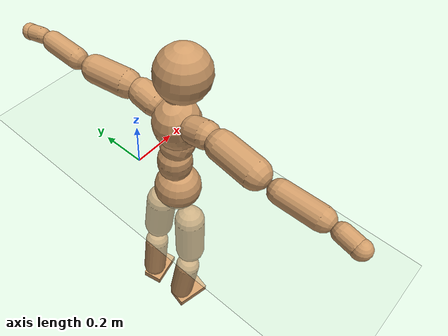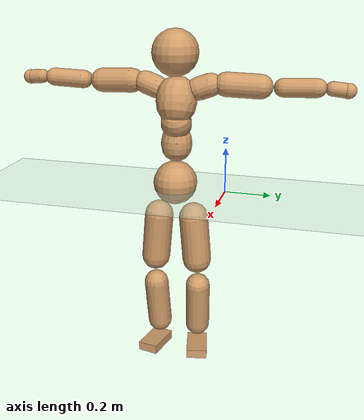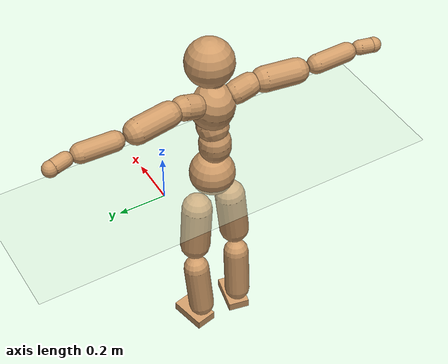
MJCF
<mujoco model="humanoid">
  <compiler coordinate="local"/>
  <default>
    <joint damping="0.0" armature="0.01" stiffness="0.0" limited="true"/>
    <geom conaffinity="1" condim="3" contype="7" margin="0.001" rgba="0.8 0.6 .4 1"/>
  </default>
  <asset>
    <texture type="skybox" builtin="gradient" rgb1=".4 .5 .6" rgb2="0 0 0" width="100" height="100"/>
    <texture builtin="flat" height="1278" mark="cross" markrgb="1 1 1" name="texgeom" random="0.01" rgb1="0.8 0.6 0.4" rgb2="0.8 0.6 0.4" type="cube" width="127"/>
    <texture builtin="checker" height="100" name="texplane" rgb1="0 0 0" rgb2="0.8 0.8 0.8" type="2d" width="100"/>
    <material name="MatPlane" reflectance="0.5" shininess="1" specular="1" texrepeat="60 60" texture="texplane"/>
    <material name="geom" texture="texgeom" texuniform="true"/>
  </asset>
  <worldbody>
    <light cutoff="100" diffuse="1 1 1" dir="-0 0 -1.3" directional="true" exponent="1" pos="0 0 1.3" specular=".1 .1 .1"/>
    <geom conaffinity="1" condim="3" name="floor" pos="0 0 0" rgba="0.8 0.9 0.8 1" size="100 100 .2" type="plane" material="MatPlane"/>
    <body name="Pelvis" pos="-0.0016 -0.2277 0.0263">
      <freejoint name="Pelvis"/>
      <geom type="sphere" contype="1" conaffinity="1" density="500" size="0.0982" pos="0.0000 0.0000 0.0000" name="Pelvis"/>
      <body name="L_Hip" pos="-0.0099 0.0768 -0.0929">
        <joint name="L_Hip_x" type="hinge" pos="0 0 0" axis="1 0 0" stiffness="800" damping="80" armature="0.02" range="-180.0000 180.0000"/>
        <joint name="L_Hip_y" type="hinge" pos="0 0 0" axis="0 1 0" stiffness="800" damping="80" armature="0.02" range="-180.0000 180.0000"/>
        <joint name="L_Hip_z" type="hinge" pos="0 0 0" axis="0 0 1" stiffness="800" damping="80" armature="0.02" range="-180.0000 180.0000"/>
        <geom type="capsule" contype="1" conaffinity="1" density="500" fromto="-0.0017 0.0053 -0.0700 -0.0069 0.0213 -0.2799" size="0.066" name="L_Hip"/>
        <body name="L_Knee" pos="-0.0086 0.0266 -0.3499">
          <joint name="L_Knee_x" type="hinge" pos="0 0 0" axis="1 0 0" stiffness="800" damping="80" armature="0.02" range="-180.0000 180.0000"/>
          <joint name="L_Knee_y" type="hinge" pos="0 0 0" axis="0 1 0" stiffness="800" damping="80" armature="0.02" range="-180.0000 180.0000"/>
          <joint name="L_Knee_z" type="hinge" pos="0 0 0" axis="0 0 1" stiffness="800" damping="80" armature="0.02" range="-180.0000 180.0000"/>
          <geom type="capsule" contype="1" conaffinity="1" density="500" fromto="-0.0094 -0.0023 -0.0731 -0.0377 -0.0092 -0.2924" size="0.0566" name="L_Knee"/>
          <body name="L_Ankle" pos="-0.0471 -0.0115 -0.3655">
            <joint name="L_Ankle_x" type="hinge" pos="0 0 0" axis="1 0 0" stiffness="800" damping="80" armature="0.02" range="-180.0000 180.0000"/>
            <joint name="L_Ankle_y" type="hinge" pos="0 0 0" axis="0 1 0" stiffness="800" damping="80" armature="0.02" range="-180.0000 180.0000"/>
            <joint name="L_Ankle_z" type="hinge" pos="0 0 0" axis="0 0 1" stiffness="800" damping="80" armature="0.02" range="-180.0000 180.0000"/>
            <geom type="box" contype="1" conaffinity="1" density="500" pos="0.0565 0.0122 -0.0263" size="0.0814 0.0477 0.0204" quat="0.9943 0.0000 0.0000 0.1064" name="L_Ankle"/>
            <body name="L_Toe" pos="0.113 0.0245 -0.0526">
              <joint name="L_Toe_x" type="hinge" pos="0 0 0" axis="1 0 0" stiffness="500" damping="50" armature="0.02" range="-180.0000 180.0000"/>
              <joint name="L_Toe_y" type="hinge" pos="0 0 0" axis="0 1 0" stiffness="500" damping="50" armature="0.02" range="-180.0000 180.0000"/>
              <joint name="L_Toe_z" type="hinge" pos="0 0 0" axis="0 0 1" stiffness="500" damping="50" armature="0.02" range="-180.0000 180.0000"/>
              <geom type="box" contype="1" conaffinity="1" density="500" pos="0.0000 0.0000 0.0264" size="0.001 0.0024 0.001" quat="0.9936 0.0000 0.0000 0.1128" name="L_Toe"/>
            </body>
          </body>
        </body>
      </body>
      <body name="R_Hip" pos="-0.0068 -0.074 -0.0924">
        <joint name="R_Hip_x" type="hinge" pos="0 0 0" axis="1 0 0" stiffness="800" damping="80" armature="0.02" range="-180.0000 180.0000"/>
        <joint name="R_Hip_y" type="hinge" pos="0 0 0" axis="0 1 0" stiffness="800" damping="80" armature="0.02" range="-180.0000 180.0000"/>
        <joint name="R_Hip_z" type="hinge" pos="0 0 0" axis="0 0 1" stiffness="800" damping="80" armature="0.02" range="-180.0000 180.0000"/>
        <geom type="capsule" contype="1" conaffinity="1" density="500" fromto="-0.0023 -0.0065 -0.0712 -0.0094 -0.0260 -0.2847" size="0.0654" name="R_Hip"/>
        <body name="R_Knee" pos="-0.0117 -0.0325 -0.3558">
          <joint name="R_Knee_x" type="hinge" pos="0 0 0" axis="1 0 0" stiffness="800" damping="80" armature="0.02" range="-180.0000 180.0000"/>
          <joint name="R_Knee_y" type="hinge" pos="0 0 0" axis="0 1 0" stiffness="800" damping="80" armature="0.02" range="-180.0000 180.0000"/>
          <joint name="R_Knee_z" type="hinge" pos="0 0 0" axis="0 0 1" stiffness="800" damping="80" armature="0.02" range="-180.0000 180.0000"/>
          <geom type="capsule" contype="1" conaffinity="1" density="500" fromto="-0.0091 0.0027 -0.0731 -0.0366 0.0107 -0.2923" size="0.0567" name="R_Knee"/>
          <body name="R_Ankle" pos="-0.0457 0.0133 -0.3654">
            <joint name="R_Ankle_x" type="hinge" pos="0 0 0" axis="1 0 0" stiffness="800" damping="80" armature="0.02" range="-180.0000 180.0000"/>
            <joint name="R_Ankle_y" type="hinge" pos="0 0 0" axis="0 1 0" stiffness="800" damping="80" armature="0.02" range="-180.0000 180.0000"/>
            <joint name="R_Ankle_z" type="hinge" pos="0 0 0" axis="0 0 1" stiffness="800" damping="80" armature="0.02" range="-180.0000 180.0000"/>
            <geom type="box" contype="1" conaffinity="1" density="500" pos="0.0585 -0.0121 -0.0229" size="0.0822 0.047 0.0203" quat="0.9948 0.0000 0.0000 -0.1021" name="R_Ankle"/>
            <body name="R_Toe" pos="0.117 -0.0243 -0.0458">
              <joint name="R_Toe_x" type="hinge" pos="0 0 0" axis="1 0 0" stiffness="500" damping="50" armature="0.02" range="-180.0000 180.0000"/>
              <joint name="R_Toe_y" type="hinge" pos="0 0 0" axis="0 1 0" stiffness="500" damping="50" armature="0.02" range="-180.0000 180.0000"/>
              <joint name="R_Toe_z" type="hinge" pos="0 0 0" axis="0 0 1" stiffness="500" damping="50" armature="0.02" range="-180.0000 180.0000"/>
              <geom type="box" contype="1" conaffinity="1" density="500" pos="0.0000 0.0000 0.0246" size="0.0009 0.0023 0.0011" quat="0.9957 0.0000 0.0000 -0.0924" name="R_Toe"/>
            </body>
          </body>
        </body>
      </body>
      <body name="Torso" pos="-0.0223 -0.0024 0.1074">
        <joint name="Torso_x" type="hinge" pos="0 0 0" axis="1 0 0" stiffness="1000" damping="100" armature="0.02" range="-180.0000 180.0000"/>
        <joint name="Torso_y" type="hinge" pos="0 0 0" axis="0 1 0" stiffness="1000" damping="100" armature="0.02" range="-180.0000 180.0000"/>
        <joint name="Torso_z" type="hinge" pos="0 0 0" axis="0 0 1" stiffness="1000" damping="100" armature="0.02" range="-180.0000 180.0000"/>
        <geom type="capsule" contype="1" conaffinity="1" density="500" fromto="-0.0012 0.0025 0.0812 -0.0008 0.0017 0.0541" size="0.068169" name="Torso"/>
        <body name="Spine" pos="-0.002 0.0041 0.1354">
          <joint name="Spine_x" type="hinge" pos="0 0 0" axis="1 0 0" stiffness="1000" damping="100" armature="0.02" range="-180.0000 180.0000"/>
          <joint name="Spine_y" type="hinge" pos="0 0 0" axis="0 1 0" stiffness="1000" damping="100" armature="0.02" range="-180.0000 180.0000"/>
          <joint name="Spine_z" type="hinge" pos="0 0 0" axis="0 0 1" stiffness="1000" damping="100" armature="0.02" range="-180.0000 180.0000"/>
          <geom type="capsule" contype="1" conaffinity="1" density="500" fromto="0.0198 0.0009 0.0309 0.0132 0.0006 0.0206" size="0.067797" name="Spine"/>
          <body name="Chest" pos="0.0331 0.0015 0.0515">
            <joint name="Chest_x" type="hinge" pos="0 0 0" axis="1 0 0" stiffness="1000" damping="100" armature="0.02" range="-180.0000 180.0000"/>
            <joint name="Chest_y" type="hinge" pos="0 0 0" axis="0 1 0" stiffness="1000" damping="100" armature="0.02" range="-180.0000 180.0000"/>
            <joint name="Chest_z" type="hinge" pos="0 0 0" axis="0 0 1" stiffness="1000" damping="100" armature="0.02" range="-180.0000 180.0000"/>
            <geom type="capsule" contype="1" conaffinity="1" density="500" fromto="-0.0262 -0.0008 0.0902 -0.0174 -0.0005 0.0601" size="0.089652" name="Chest"/>
            <body name="Neck" pos="-0.0518 -0.0024 0.2138">
              <joint name="Neck_x" type="hinge" pos="0 0 0" axis="1 0 0" stiffness="500" damping="50" armature="0.02" range="-180.0000 180.0000"/>
              <joint name="Neck_y" type="hinge" pos="0 0 0" axis="0 1 0" stiffness="500" damping="50" armature="0.02" range="-180.0000 180.0000"/>
              <joint name="Neck_z" type="hinge" pos="0 0 0" axis="0 0 1" stiffness="500" damping="50" armature="0.02" range="-180.0000 180.0000"/>
              <geom type="capsule" contype="1" conaffinity="1" density="500" fromto="0.0102 0.0005 0.0131 0.0410 0.0022 0.0525" size="0.038874" name="Neck"/>
              <body name="Head" pos="0.0512 0.0027 0.0656">
                <joint name="Head_x" type="hinge" pos="0 0 0" axis="1 0 0" stiffness="500" damping="50" armature="0.02" range="-180.0000 180.0000"/>
                <joint name="Head_y" type="hinge" pos="0 0 0" axis="0 1 0" stiffness="500" damping="50" armature="0.02" range="-180.0000 180.0000"/>
                <joint name="Head_z" type="hinge" pos="0 0 0" axis="0 0 1" stiffness="500" damping="50" armature="0.02" range="-180.0000 180.0000"/>
                <geom type="sphere" contype="1" conaffinity="1" density="500" size="0.1009" pos="0.0000 0.0000 0.0000" name="Head"/>
              </body>
            </body>
            <body name="L_Thorax" pos="-0.0369 0.0751 0.1194">
              <joint name="L_Thorax_x" type="hinge" pos="0 0 0" axis="1 0 0" stiffness="500" damping="50" armature="0.02" range="-180.0000 180.0000"/>
              <joint name="L_Thorax_y" type="hinge" pos="0 0 0" axis="0 1 0" stiffness="500" damping="50" armature="0.02" range="-180.0000 180.0000"/>
              <joint name="L_Thorax_z" type="hinge" pos="0 0 0" axis="0 0 1" stiffness="500" damping="50" armature="0.02" range="-180.0000 180.0000"/>
              <geom type="capsule" contype="1" conaffinity="1" density="500" fromto="-0.0018 0.0173 0.0060 -0.0071 0.0690 0.0240" size="0.0509" name="L_Thorax"/>
              <body name="L_Shoulder" pos="-0.0089 0.0863 0.03">
                <joint name="L_Shoulder_x" type="hinge" pos="0 0 0" axis="1 0 0" stiffness="500" damping="50" armature="0.02" range="-720.0000 720.0000"/>
                <joint name="L_Shoulder_y" type="hinge" pos="0 0 0" axis="0 1 0" stiffness="500" damping="50" armature="0.02" range="-720.0000 720.0000"/>
                <joint name="L_Shoulder_z" type="hinge" pos="0 0 0" axis="0 0 1" stiffness="500" damping="50" armature="0.02" range="-720.0000 720.0000"/>
                <geom type="capsule" contype="1" conaffinity="1" density="500" fromto="-0.0058 0.0486 -0.0021 -0.0231 0.1945 -0.0085" size="0.053" name="L_Shoulder"/>
                <body name="L_Elbow" pos="-0.0289 0.2431 -0.0107">
                  <joint name="L_Elbow_x" type="hinge" pos="0 0 0" axis="1 0 0" stiffness="500" damping="50" armature="0.02" range="-720.0000 720.0000"/>
                  <joint name="L_Elbow_y" type="hinge" pos="0 0 0" axis="0 1 0" stiffness="500" damping="50" armature="0.02" range="-720.0000 720.0000"/>
                  <joint name="L_Elbow_z" type="hinge" pos="0 0 0" axis="0 0 1" stiffness="500" damping="50" armature="0.02" range="-720.0000 720.0000"/>
                  <geom type="capsule" contype="1" conaffinity="1" density="500" fromto="0.0003 0.0463 0.0015 0.0012 0.1851 0.0062" size="0.0409" name="L_Elbow"/>
                  <body name="L_Wrist" pos="0.0015 0.2314 0.0077">
                    <joint name="L_Wrist_x" type="hinge" pos="0 0 0" axis="1 0 0" stiffness="300" damping="30" armature="0.02" range="-180.0000 180.0000"/>
                    <joint name="L_Wrist_y" type="hinge" pos="0 0 0" axis="0 1 0" stiffness="300" damping="30" armature="0.02" range="-180.0000 180.0000"/>
                    <joint name="L_Wrist_z" type="hinge" pos="0 0 0" axis="0 0 1" stiffness="300" damping="30" armature="0.02" range="-180.0000 180.0000"/>
                    <geom type="capsule" contype="1" conaffinity="1" density="500" fromto="-0.0026 0.0162 -0.0020 -0.0105 0.0649 -0.0078" size="0.031" name="L_Wrist"/>
                    <body name="L_Hand" pos="-0.0132 0.0811 -0.0098">
                      <joint name="L_Hand_x" type="hinge" pos="0 0 0" axis="1 0 0" stiffness="300" damping="30" armature="0.02" range="-180.0000 180.0000"/>
                      <joint name="L_Hand_y" type="hinge" pos="0 0 0" axis="0 1 0" stiffness="300" damping="30" armature="0.02" range="-180.0000 180.0000"/>
                      <joint name="L_Hand_z" type="hinge" pos="0 0 0" axis="0 0 1" stiffness="300" damping="30" armature="0.02" range="-180.0000 180.0000"/>
                      <geom type="sphere" contype="1" conaffinity="1" density="500" size="0.0328" pos="0.0000 0.0000 0.0000" name="L_Hand"/>
                    </body>
                  </body>
                </body>
              </body>
            </body>
            <body name="R_Thorax" pos="-0.0421 -0.0765 0.1177">
              <joint name="R_Thorax_x" type="hinge" pos="0 0 0" axis="1 0 0" stiffness="500" damping="50" armature="0.02" range="-180.0000 180.0000"/>
              <joint name="R_Thorax_y" type="hinge" pos="0 0 0" axis="0 1 0" stiffness="500" damping="50" armature="0.02" range="-180.0000 180.0000"/>
              <joint name="R_Thorax_z" type="hinge" pos="0 0 0" axis="0 0 1" stiffness="500" damping="50" armature="0.02" range="-180.0000 180.0000"/>
              <geom type="capsule" contype="1" conaffinity="1" density="500" fromto="-0.0018 -0.0179 0.0062 -0.0073 -0.0714 0.0249" size="0.0496" name="R_Thorax"/>
              <body name="R_Shoulder" pos="-0.0091 -0.0893 0.0312">
                <joint name="R_Shoulder_x" type="hinge" pos="0 0 0" axis="1 0 0" stiffness="500" damping="50" armature="0.02" range="-720.0000 720.0000"/>
                <joint name="R_Shoulder_y" type="hinge" pos="0 0 0" axis="0 1 0" stiffness="500" damping="50" armature="0.02" range="-720.0000 720.0000"/>
                <joint name="R_Shoulder_z" type="hinge" pos="0 0 0" axis="0 0 1" stiffness="500" damping="50" armature="0.02" range="-720.0000 720.0000"/>
                <geom type="capsule" contype="1" conaffinity="1" density="500" fromto="-0.0043 -0.0474 -0.0024 -0.0174 -0.1897 -0.0095" size="0.0539" name="R_Shoulder"/>
                <body name="R_Elbow" pos="-0.0217 -0.2372 -0.0119">
                  <joint name="R_Elbow_x" type="hinge" pos="0 0 0" axis="1 0 0" stiffness="500" damping="50" armature="0.02" range="-720.0000 720.0000"/>
                  <joint name="R_Elbow_y" type="hinge" pos="0 0 0" axis="0 1 0" stiffness="500" damping="50" armature="0.02" range="-720.0000 720.0000"/>
                  <joint name="R_Elbow_z" type="hinge" pos="0 0 0" axis="0 0 1" stiffness="500" damping="50" armature="0.02" range="-720.0000 720.0000"/>
                  <geom type="capsule" contype="1" conaffinity="1" density="500" fromto="-0.0003 -0.0472 0.0016 -0.0012 -0.1887 0.0063" size="0.0408" name="R_Elbow"/>
                  <body name="R_Wrist" pos="-0.0015 -0.2359 0.0078">
                    <joint name="R_Wrist_x" type="hinge" pos="0 0 0" axis="1 0 0" stiffness="300" damping="30" armature="0.02" range="-180.0000 180.0000"/>
                    <joint name="R_Wrist_y" type="hinge" pos="0 0 0" axis="0 1 0" stiffness="300" damping="30" armature="0.02" range="-180.0000 180.0000"/>
                    <joint name="R_Wrist_z" type="hinge" pos="0 0 0" axis="0 0 1" stiffness="300" damping="30" armature="0.02" range="-180.0000 180.0000"/>
                    <geom type="capsule" contype="1" conaffinity="1" density="500" fromto="-0.0021 -0.0161 -0.0015 -0.0084 -0.0644 -0.0058" size="0.0313" name="R_Wrist"/>
                    <body name="R_Hand" pos="-0.0105 -0.0805 -0.0073">
                      <joint name="R_Hand_x" type="hinge" pos="0 0 0" axis="1 0 0" stiffness="300" damping="30" armature="0.02" range="-180.0000 180.0000"/>
                      <joint name="R_Hand_y" type="hinge" pos="0 0 0" axis="0 1 0" stiffness="300" damping="30" armature="0.02" range="-180.0000 180.0000"/>
                      <joint name="R_Hand_z" type="hinge" pos="0 0 0" axis="0 0 1" stiffness="300" damping="30" armature="0.02" range="-180.0000 180.0000"/>
                      <geom type="sphere" contype="1" conaffinity="1" density="500" size="0.0325" pos="0.0000 0.0000 0.0000" name="R_Hand"/>
                    </body>
                  </body>
                </body>
              </body>
            </body>
          </body>
        </body>
      </body>
    </body>
  </worldbody>
  <actuator>
    <motor name="L_Hip_x" joint="L_Hip_x" gear="500"/>
    <motor name="L_Hip_y" joint="L_Hip_y" gear="500"/>
    <motor name="L_Hip_z" joint="L_Hip_z" gear="500"/>
    <motor name="L_Knee_x" joint="L_Knee_x" gear="500"/>
    <motor name="L_Knee_y" joint="L_Knee_y" gear="500"/>
    <motor name="L_Knee_z" joint="L_Knee_z" gear="500"/>
    <motor name="L_Ankle_x" joint="L_Ankle_x" gear="500"/>
    <motor name="L_Ankle_y" joint="L_Ankle_y" gear="500"/>
    <motor name="L_Ankle_z" joint="L_Ankle_z" gear="500"/>
    <motor name="L_Toe_x" joint="L_Toe_x" gear="500"/>
    <motor name="L_Toe_y" joint="L_Toe_y" gear="500"/>
    <motor name="L_Toe_z" joint="L_Toe_z" gear="500"/>
    <motor name="R_Hip_x" joint="R_Hip_x" gear="500"/>
    <motor name="R_Hip_y" joint="R_Hip_y" gear="500"/>
    <motor name="R_Hip_z" joint="R_Hip_z" gear="500"/>
    <motor name="R_Knee_x" joint="R_Knee_x" gear="500"/>
    <motor name="R_Knee_y" joint="R_Knee_y" gear="500"/>
    <motor name="R_Knee_z" joint="R_Knee_z" gear="500"/>
    <motor name="R_Ankle_x" joint="R_Ankle_x" gear="500"/>
    <motor name="R_Ankle_y" joint="R_Ankle_y" gear="500"/>
    <motor name="R_Ankle_z" joint="R_Ankle_z" gear="500"/>
    <motor name="R_Toe_x" joint="R_Toe_x" gear="500"/>
    <motor name="R_Toe_y" joint="R_Toe_y" gear="500"/>
    <motor name="R_Toe_z" joint="R_Toe_z" gear="500"/>
    <motor name="Torso_x" joint="Torso_x" gear="500"/>
    <motor name="Torso_y" joint="Torso_y" gear="500"/>
    <motor name="Torso_z" joint="Torso_z" gear="500"/>
    <motor name="Spine_x" joint="Spine_x" gear="500"/>
    <motor name="Spine_y" joint="Spine_y" gear="500"/>
    <motor name="Spine_z" joint="Spine_z" gear="500"/>
    <motor name="Chest_x" joint="Chest_x" gear="500"/>
    <motor name="Chest_y" joint="Chest_y" gear="500"/>
    <motor name="Chest_z" joint="Chest_z" gear="500"/>
    <motor name="Neck_x" joint="Neck_x" gear="500"/>
    <motor name="Neck_y" joint="Neck_y" gear="500"/>
    <motor name="Neck_z" joint="Neck_z" gear="500"/>
    <motor name="Head_x" joint="Head_x" gear="500"/>
    <motor name="Head_y" joint="Head_y" gear="500"/>
    <motor name="Head_z" joint="Head_z" gear="500"/>
    <motor name="L_Thorax_x" joint="L_Thorax_x" gear="500"/>
    <motor name="L_Thorax_y" joint="L_Thorax_y" gear="500"/>
    <motor name="L_Thorax_z" joint="L_Thorax_z" gear="500"/>
    <motor name="L_Shoulder_x" joint="L_Shoulder_x" gear="500"/>
    <motor name="L_Shoulder_y" joint="L_Shoulder_y" gear="500"/>
    <motor name="L_Shoulder_z" joint="L_Shoulder_z" gear="500"/>
    <motor name="L_Elbow_x" joint="L_Elbow_x" gear="500"/>
    <motor name="L_Elbow_y" joint="L_Elbow_y" gear="500"/>
    <motor name="L_Elbow_z" joint="L_Elbow_z" gear="500"/>
    <motor name="L_Wrist_x" joint="L_Wrist_x" gear="500"/>
    <motor name="L_Wrist_y" joint="L_Wrist_y" gear="500"/>
    <motor name="L_Wrist_z" joint="L_Wrist_z" gear="500"/>
    <motor name="L_Hand_x" joint="L_Hand_x" gear="500"/>
    <motor name="L_Hand_y" joint="L_Hand_y" gear="500"/>
    <motor name="L_Hand_z" joint="L_Hand_z" gear="500"/>
    <motor name="R_Thorax_x" joint="R_Thorax_x" gear="500"/>
    <motor name="R_Thorax_y" joint="R_Thorax_y" gear="500"/>
    <motor name="R_Thorax_z" joint="R_Thorax_z" gear="500"/>
    <motor name="R_Shoulder_x" joint="R_Shoulder_x" gear="500"/>
    <motor name="R_Shoulder_y" joint="R_Shoulder_y" gear="500"/>
    <motor name="R_Shoulder_z" joint="R_Shoulder_z" gear="500"/>
    <motor name="R_Elbow_x" joint="R_Elbow_x" gear="500"/>
    <motor name="R_Elbow_y" joint="R_Elbow_y" gear="500"/>
    <motor name="R_Elbow_z" joint="R_Elbow_z" gear="500"/>
    <motor name="R_Wrist_x" joint="R_Wrist_x" gear="500"/>
    <motor name="R_Wrist_y" joint="R_Wrist_y" gear="500"/>
    <motor name="R_Wrist_z" joint="R_Wrist_z" gear="500"/>
    <motor name="R_Hand_x" joint="R_Hand_x" gear="500"/>
    <motor name="R_Hand_y" joint="R_Hand_y" gear="500"/>
    <motor name="R_Hand_z" joint="R_Hand_z" gear="500"/>
  </actuator>
  <contact>
    <exclude body1="Torso" body2="Chest"/>
    <exclude body1="Head" body2="Chest"/>
    <exclude body1="R_Knee" body2="R_Toe"/>
    <exclude body1="R_Knee" body2="L_Ankle"/>
    <exclude body1="R_Knee" body2="L_Toe"/>
    <exclude body1="L_Knee" body2="L_Toe"/>
    <exclude body1="L_Knee" body2="R_Ankle"/>
    <exclude body1="L_Knee" body2="R_Toe"/>
    <exclude body1="L_Shoulder" body2="Chest"/>
    <exclude body1="R_Shoulder" body2="Chest"/>
  </contact>
  <sensor/>
  <size njmax="700" nconmax="700"/>
</mujoco>
